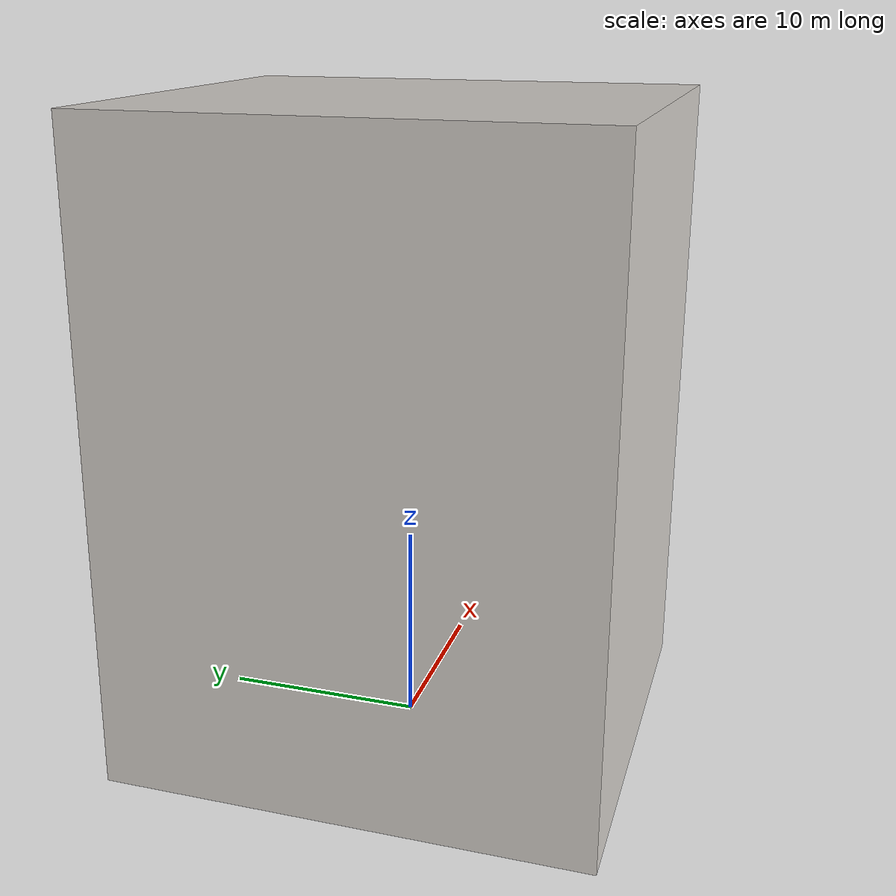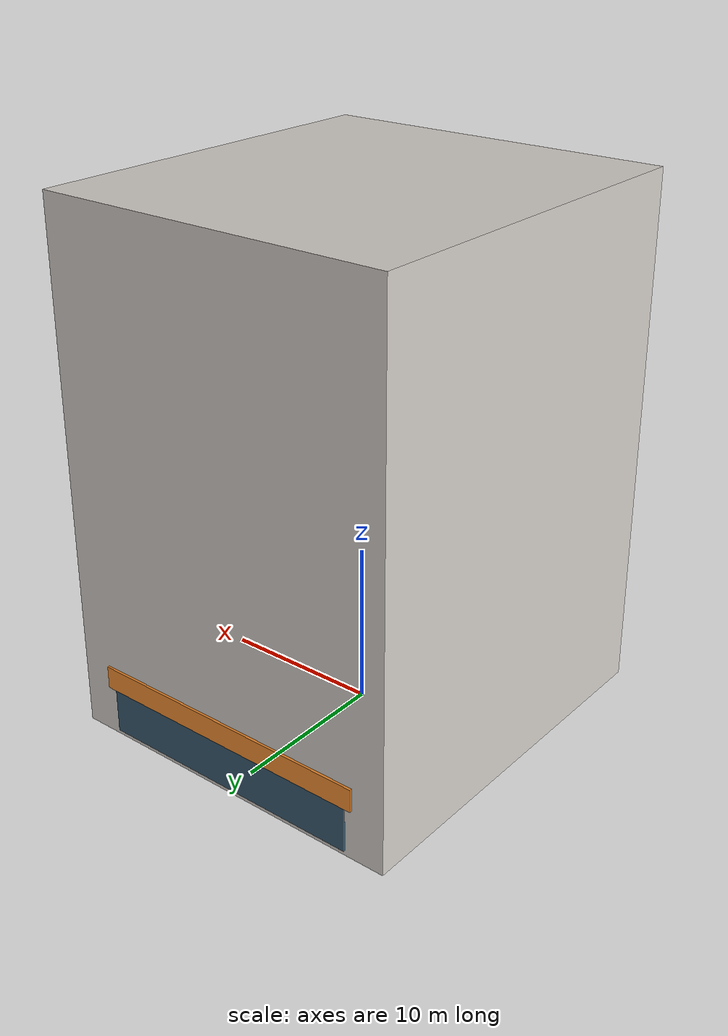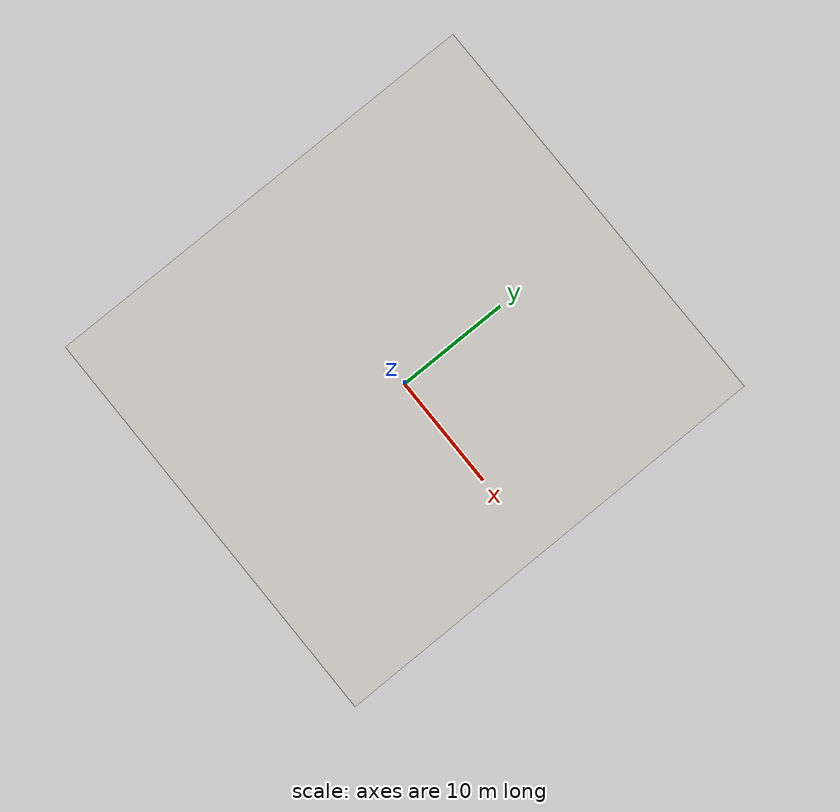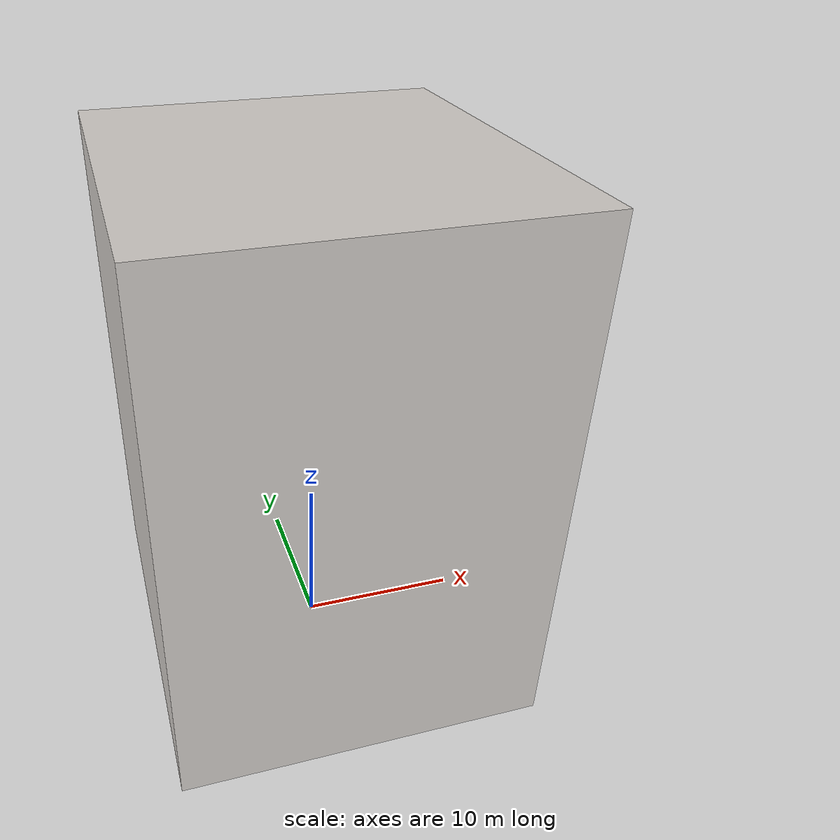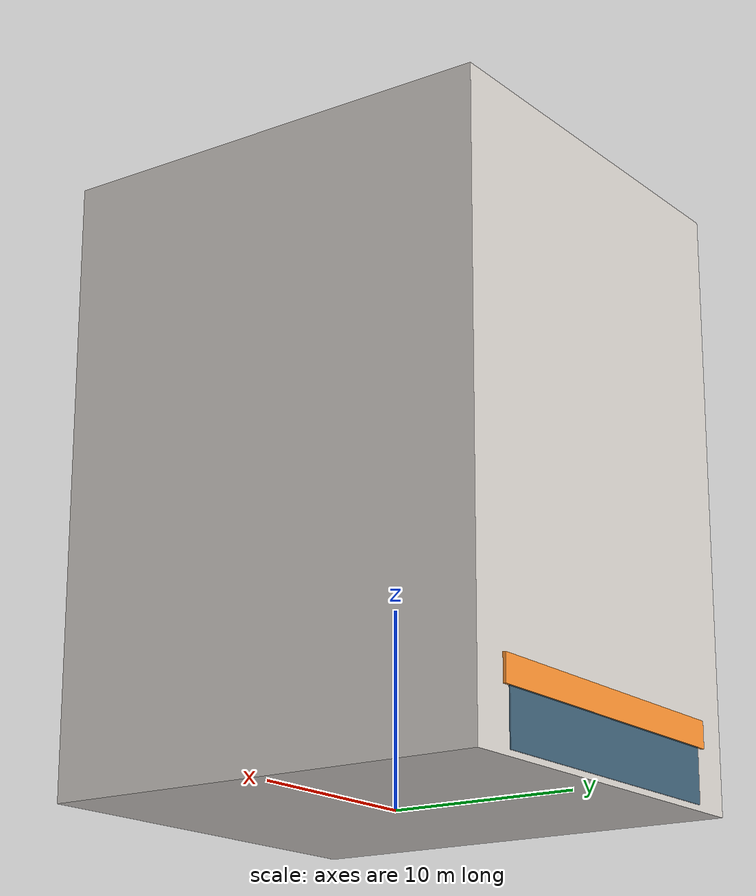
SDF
<?xml version="1.0" ?>
<sdf version="1.8">
  <model name="corner_boutique_plaza">
    <static>true</static>
    <link name="plaza_link">
      <collision name="col"><pose>0 0 16.0 0 0 0</pose><geometry><box><size>22.0 24.0 32.0</size></box></geometry></collision>
      <visual name="main_vis"><pose>0 0 16.0 0 0 0</pose><geometry><box><size>22.0 24.0 32.0</size></box></geometry><material><ambient>0.75 0.74 0.72 1</ambient><diffuse>0.82 0.80 0.78 1</diffuse></material></visual>
      <visual name="shop_fascia"><pose>0 12.1 3.8 0 0 0</pose><geometry><box><size>18.0 0.15 1.4</size></box></geometry><material><ambient>0.85 0.45 0.15 1</ambient><diffuse>0.95 0.55 0.18 1</diffuse><emissive>0.3 0.15 0.05 1</emissive></material></visual>
      <visual name="glass_front"><pose>0 12.05 1.8 0 0 0</pose><geometry><box><size>17.0 0.1 3.0</size></box></geometry><material><ambient>0.15 0.25 0.35 0.88</ambient><diffuse>0.20 0.35 0.45 0.88</diffuse></material></visual>
    </link>
  </model>
</sdf>
